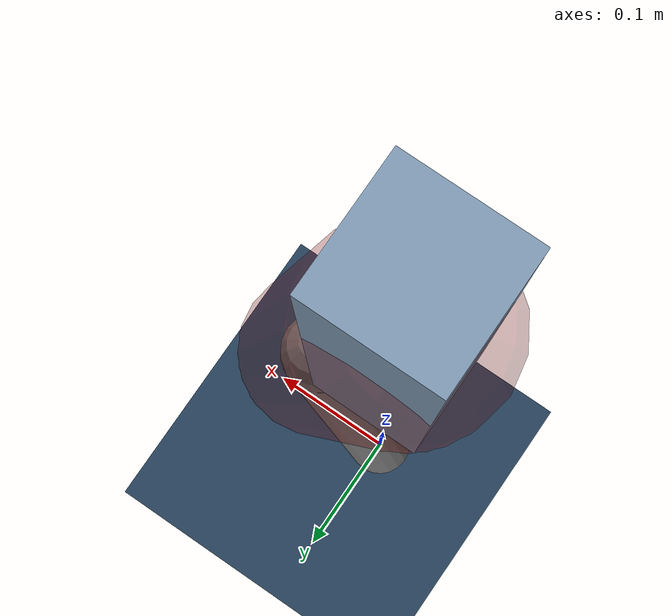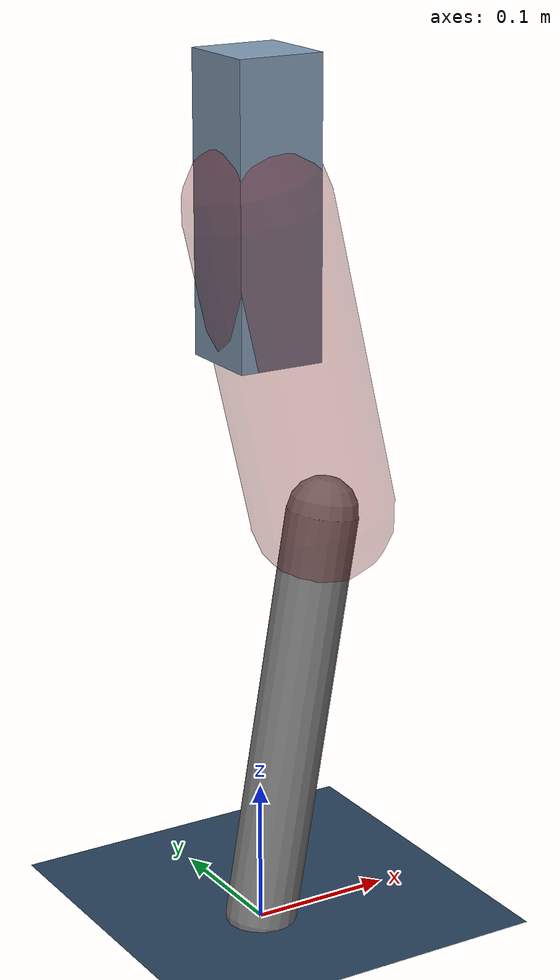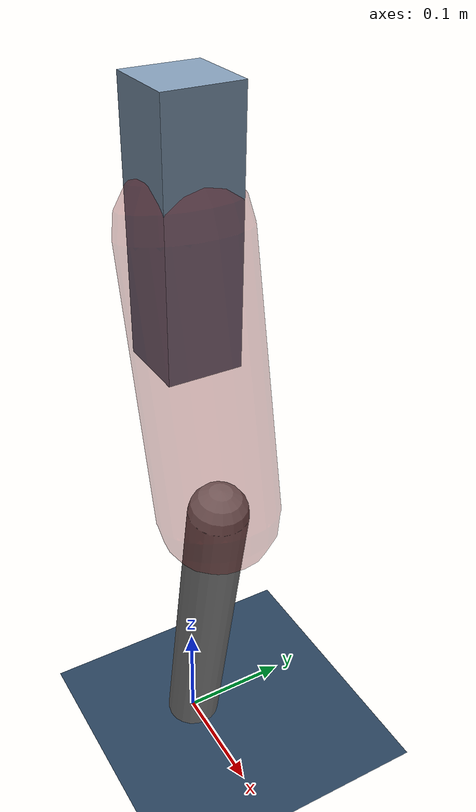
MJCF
<mujoco model="Hopper2D">
	<compiler inertiafromgeom="true" angle="radian" />
	<option timestep="0.001" integrator="implicit" cone="elliptic" solver="Newton" tolerance="1e-10" />

	<default>
		<geom contype="1" conaffinity="1" condim="3" friction="2 0.005 0.0001" solref="0.005 1" />
		<joint limited="true" damping="0.1" />
	</default>

	<asset>
		<texture name="skybox" type="skybox" builtin="gradient" rgb1=".4 .6 .8" rgb2="0 0 0" width="800" height="800" />
		<texture name="grid" type="2d" builtin="checker" rgb1=".1 .2 .3" rgb2=".2 .3 .4" width="300" height="300" mark="edge" markrgb=".2 .3 .4" />
		<material name="ground" texture="grid" texrepeat="1 1" texuniform="true" reflectance="0.1" />
		<material name="leg" rgba="0.5 0.6 0.7 1" />
	</asset>

	<worldbody>

		<geom name="floor" type="plane" size="5 5 0.25" material="ground" />

		<light directional="false" diffuse="0.8 0.8 0.8" specular="0.3 0.3 0.3" pos="0 0 2" dir="0 0 -1" />
		<light mode="targetbodycom" target="base" directional="false" diffuse="0.8 0.8 0.8" specular="0.3 0.3 0.3" pos="0 0 2" dir="0 0 -1" />

		<camera name="fixed" pos="0 -2 1" xyaxes="1 0 0 0 0 1" />
		<camera name="tracking" mode="trackcom" pos="0 -3 1" />

		<body name="root" pos="0 0 0.5063682087705295">
			<joint name="slide_x" type="slide" axis="1 0 0" range="-100 100" />
			<joint name="slide_z" type="slide" axis="0 0 1" range="0 10" />

			<body name="base" pos="0 0 0">
				<geom name="torso" type="box" size="0.03 0.03 0.1" mass="1.8399999999999999" material="leg" />

				<body name="link1" pos="0 0 0" euler="0 1.3417184979469146 0">
					<joint type="hinge" axis="0 -1 0" pos="0 0 0" name="hinge1" limited="true" range="-3.14 3.14" stiffness="0" damping="0.1" />
					<geom name="thigh" type="capsule" fromto="0 0 0 0.22014922300664186 0 0" size="0.05" rgba="0.5 0 0 0.3" mass="0.7800730575166046" />

					<body name="link2" pos="0.22014922300664186 0 0" euler="0 0.3986543467481141 0">
						<joint type="hinge" axis="0 -1 0" pos="0 0 0" name="hinge2" limited="true" range="-3.14 3.14" stiffness="0" damping="0.1" />
						<geom name="shank" type="capsule" fromto="0 0 0 0.2962189857638876 0 0" size="0.025" mass="0.4803751886111101" />

					</body>
				</body>
			</body>
		</body>
	</worldbody>

	<actuator>
		<motor name="torque1" joint="hinge1" ctrlrange="-24.626632489438776 24.626632489438776" ctrllimited="true" gear="1" />
		<motor name="torque2" joint="hinge2" ctrlrange="-84.33021184311517 84.33021184311517" ctrllimited="true" gear="1" />
	</actuator>
</mujoco>
